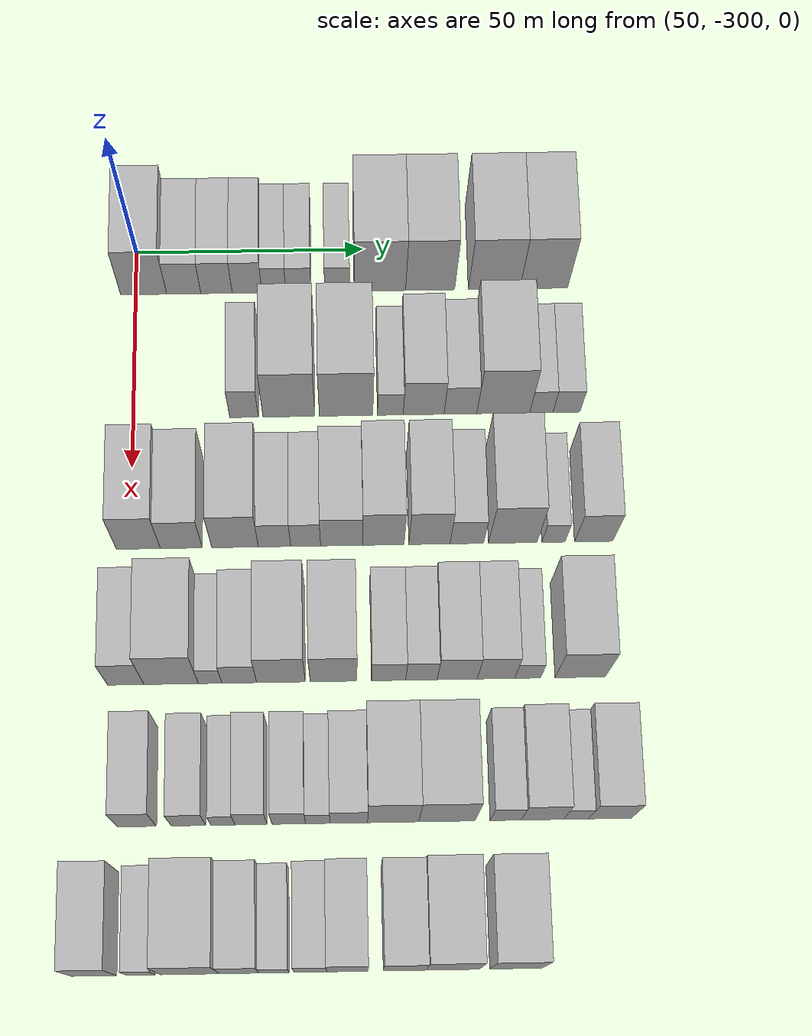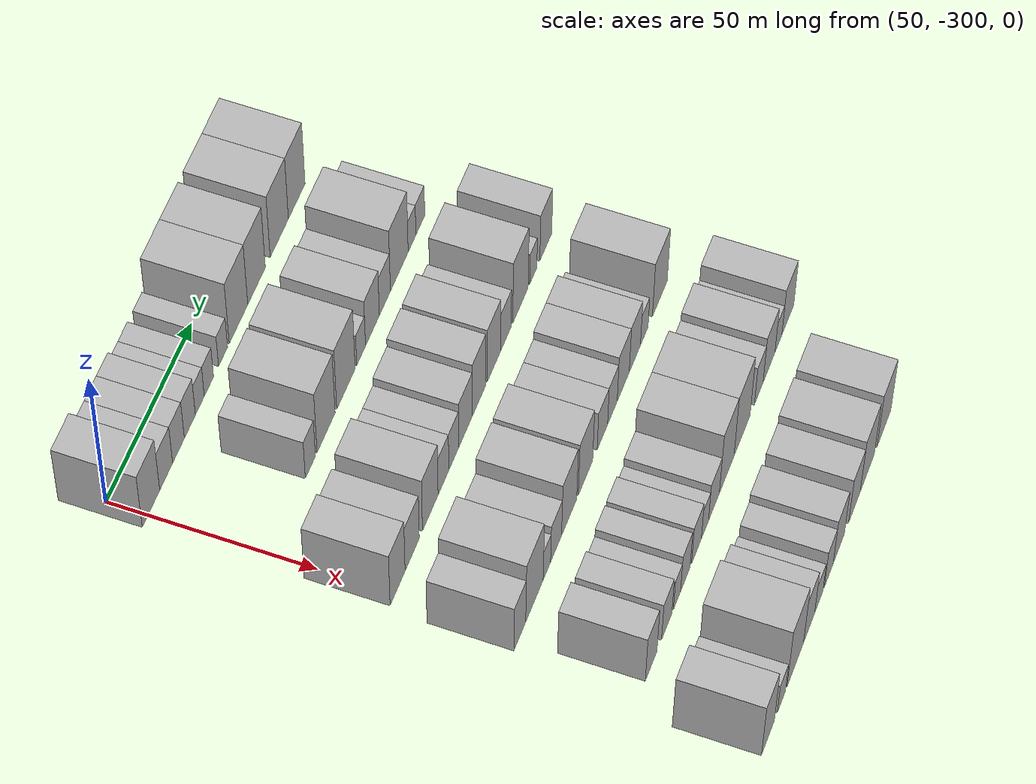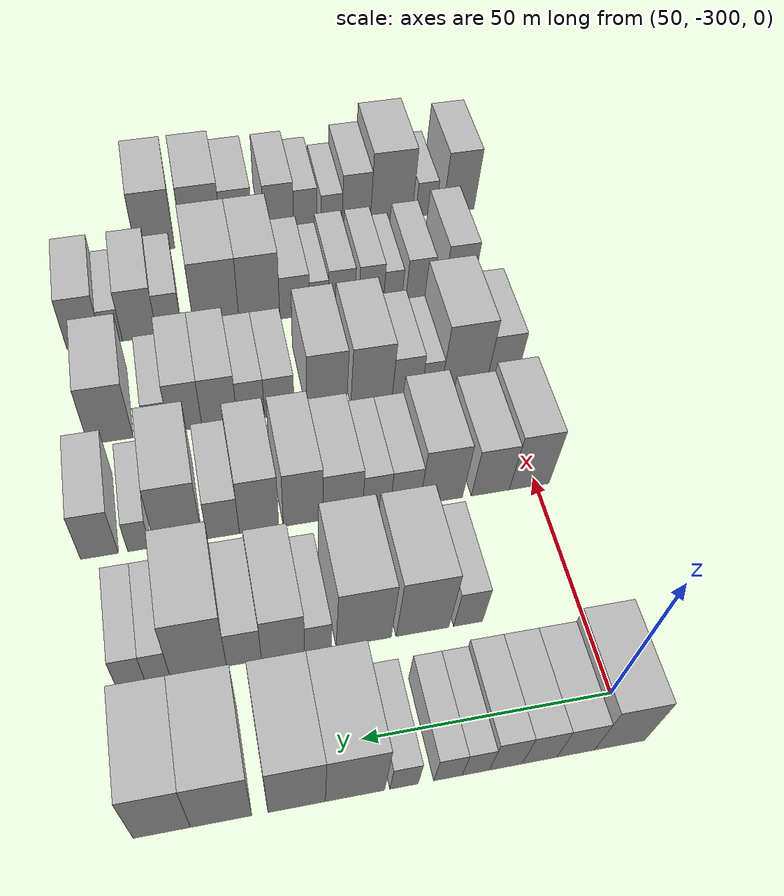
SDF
<sdf version="1.6">
 <world name="default">
  <model name="building_23">
   <static>1</static>
   <pose>50.0000 -298.2257 0 0.000000 0.000000 0.000000</pose>
   <link name="link">
    <pose>0 0 10.50 0 0 0</pose>
    <collision name="collision"><geometry><box><size>20.0000 10.0577 21.0000</size></box></geometry></collision>
    <visual name="visual">
     <cast_shadows>0</cast_shadows>
     <geometry><box><size>20.0000 10.0577 21.0000</size></box></geometry>
     <material>
      <script>
       <uri>model://HANNAS_wall/materials/scripts</uri>
       <uri>model://HANNAS_wall/materials/textures</uri>
       <name>vrc/HANNAS_wall</name>
      </script>
     </material>
    </visual>
   </link>
  </model>
  <model name="building_24">
   <static>1</static>
   <pose>50.0000 -289.4588 0 0.000000 0.000000 0.000000</pose>
   <link name="link">
    <pose>0 0 7.50 0 0 0</pose>
    <collision name="collision"><geometry><box><size>20.0000 7.4761 15.0000</size></box></geometry></collision>
    <visual name="visual">
     <cast_shadows>0</cast_shadows>
     <geometry><box><size>20.0000 7.4761 15.0000</size></box></geometry>
     <material>
      <script>
       <uri>model://HANNAS_wall/materials/scripts</uri>
       <uri>model://HANNAS_wall/materials/textures</uri>
       <name>vrc/HANNAS_wall</name>
      </script>
     </material>
    </visual>
   </link>
  </model>
  <model name="building_25">
   <static>1</static>
   <pose>50.0000 -282.2839 0 0.000000 0.000000 0.000000</pose>
   <link name="link">
    <pose>0 0 7.50 0 0 0</pose>
    <collision name="collision"><geometry><box><size>20.0000 6.8737 15.0000</size></box></geometry></collision>
    <visual name="visual">
     <cast_shadows>0</cast_shadows>
     <geometry><box><size>20.0000 6.8737 15.0000</size></box></geometry>
     <material>
      <script>
       <uri>model://HANNAS_wall/materials/scripts</uri>
       <uri>model://HANNAS_wall/materials/textures</uri>
       <name>vrc/HANNAS_wall</name>
      </script>
     </material>
    </visual>
   </link>
  </model>
  <model name="building_26">
   <static>1</static>
   <pose>50.0000 -275.6024 0 0.000000 0.000000 0.000000</pose>
   <link name="link">
    <pose>0 0 7.50 0 0 0</pose>
    <collision name="collision"><geometry><box><size>20.0000 6.4892 15.0000</size></box></geometry></collision>
    <visual name="visual">
     <cast_shadows>0</cast_shadows>
     <geometry><box><size>20.0000 6.4892 15.0000</size></box></geometry>
     <material>
      <script>
       <uri>model://HANNAS_wall/materials/scripts</uri>
       <uri>model://HANNAS_wall/materials/textures</uri>
       <name>vrc/HANNAS_wall</name>
      </script>
     </material>
    </visual>
   </link>
  </model>
  <model name="building_27">
   <static>1</static>
   <pose>50.0000 -269.7325 0 0.000000 0.000000 0.000000</pose>
   <link name="link">
    <pose>0 0 6.00 0 0 0</pose>
    <collision name="collision"><geometry><box><size>20.0000 5.2507 12.0000</size></box></geometry></collision>
    <visual name="visual">
     <cast_shadows>0</cast_shadows>
     <geometry><box><size>20.0000 5.2507 12.0000</size></box></geometry>
     <material>
      <script>
       <uri>model://HANNAS_wall/materials/scripts</uri>
       <uri>model://HANNAS_wall/materials/textures</uri>
       <name>vrc/HANNAS_wall</name>
      </script>
     </material>
    </visual>
   </link>
  </model>
  <model name="building_28">
   <static>1</static>
   <pose>50.0000 -264.3541 0 0.000000 0.000000 0.000000</pose>
   <link name="link">
    <pose>0 0 6.00 0 0 0</pose>
    <collision name="collision"><geometry><box><size>20.0000 5.5062 12.0000</size></box></geometry></collision>
    <visual name="visual">
     <cast_shadows>0</cast_shadows>
     <geometry><box><size>20.0000 5.5062 12.0000</size></box></geometry>
     <material>
      <script>
       <uri>model://HANNAS_wall/materials/scripts</uri>
       <uri>model://HANNAS_wall/materials/textures</uri>
       <name>vrc/HANNAS_wall</name>
      </script>
     </material>
    </visual>
   </link>
  </model>
  <model name="building_29">
   <static>1</static>
   <pose>50.0000 -255.8877 0 0.000000 0.000000 0.000000</pose>
   <link name="link">
    <pose>0 0 6.00 0 0 0</pose>
    <collision name="collision"><geometry><box><size>20.0000 5.4264 12.0000</size></box></geometry></collision>
    <visual name="visual">
     <cast_shadows>0</cast_shadows>
     <geometry><box><size>20.0000 5.4264 12.0000</size></box></geometry>
     <material>
      <script>
       <uri>model://HANNAS_wall/materials/scripts</uri>
       <uri>model://HANNAS_wall/materials/textures</uri>
       <name>vrc/HANNAS_wall</name>
      </script>
     </material>
    </visual>
   </link>
  </model>
  <model name="building_30">
   <static>1</static>
   <pose>50.0000 -246.5515 0 0.000000 0.000000 0.000000</pose>
   <link name="link">
    <pose>0 0 12.00 0 0 0</pose>
    <collision name="collision"><geometry><box><size>20.0000 11.2462 24.0000</size></box></geometry></collision>
    <visual name="visual">
     <cast_shadows>0</cast_shadows>
     <geometry><box><size>20.0000 11.2462 24.0000</size></box></geometry>
     <material>
      <script>
       <uri>model://HANNAS_wall/materials/scripts</uri>
       <uri>model://HANNAS_wall/materials/textures</uri>
       <name>vrc/HANNAS_wall</name>
      </script>
     </material>
    </visual>
   </link>
  </model>
  <model name="building_31">
   <static>1</static>
   <pose>50.0000 -235.5521 0 0.000000 0.000000 0.000000</pose>
   <link name="link">
    <pose>0 0 12.00 0 0 0</pose>
    <collision name="collision"><geometry><box><size>20.0000 10.7525 24.0000</size></box></geometry></collision>
    <visual name="visual">
     <cast_shadows>0</cast_shadows>
     <geometry><box><size>20.0000 10.7525 24.0000</size></box></geometry>
     <material>
      <script>
       <uri>model://HANNAS_wall/materials/scripts</uri>
       <uri>model://HANNAS_wall/materials/textures</uri>
       <name>vrc/HANNAS_wall</name>
      </script>
     </material>
    </visual>
   </link>
  </model>
  <model name="building_32">
   <static>1</static>
   <pose>50.0000 -221.5228 0 0.000000 0.000000 0.000000</pose>
   <link name="link">
    <pose>0 0 12.00 0 0 0</pose>
    <collision name="collision"><geometry><box><size>20.0000 11.3062 24.0000</size></box></geometry></collision>
    <visual name="visual">
     <cast_shadows>0</cast_shadows>
     <geometry><box><size>20.0000 11.3062 24.0000</size></box></geometry>
     <material>
      <script>
       <uri>model://HANNAS_wall/materials/scripts</uri>
       <uri>model://HANNAS_wall/materials/textures</uri>
       <name>vrc/HANNAS_wall</name>
      </script>
     </material>
    </visual>
   </link>
  </model>
  <model name="building_33">
   <static>1</static>
   <pose>50.0000 -210.6419 0 0.000000 0.000000 0.000000</pose>
   <link name="link">
    <pose>0 0 12.00 0 0 0</pose>
    <collision name="collision"><geometry><box><size>20.0000 10.4556 24.0000</size></box></geometry></collision>
    <visual name="visual">
     <cast_shadows>0</cast_shadows>
     <geometry><box><size>20.0000 10.4556 24.0000</size></box></geometry>
     <material>
      <script>
       <uri>model://HANNAS_wall/materials/scripts</uri>
       <uri>model://HANNAS_wall/materials/textures</uri>
       <name>vrc/HANNAS_wall</name>
      </script>
     </material>
    </visual>
   </link>
  </model>
  <model name="building_137">
   <static>1</static>
   <pose>79.0000 -276.2377 0 0.000000 0.000000 0.000000</pose>
   <link name="link">
    <pose>0 0 7.50 0 0 0</pose>
    <collision name="collision"><geometry><box><size>20.0000 6.1100 15.0000</size></box></geometry></collision>
    <visual name="visual">
     <cast_shadows>0</cast_shadows>
     <geometry><box><size>20.0000 6.1100 15.0000</size></box></geometry>
     <material>
      <script>
       <uri>model://HANNAS_wall/materials/scripts</uri>
       <uri>model://HANNAS_wall/materials/textures</uri>
       <name>vrc/HANNAS_wall</name>
      </script>
     </material>
    </visual>
   </link>
  </model>
  <model name="building_138">
   <static>1</static>
   <pose>79.0000 -266.6431 0 0.000000 0.000000 0.000000</pose>
   <link name="link">
    <pose>0 0 12.00 0 0 0</pose>
    <collision name="collision"><geometry><box><size>20.0000 11.0792 24.0000</size></box></geometry></collision>
    <visual name="visual">
     <cast_shadows>0</cast_shadows>
     <geometry><box><size>20.0000 11.0792 24.0000</size></box></geometry>
     <material>
      <script>
       <uri>model://HANNAS_wall/materials/scripts</uri>
       <uri>model://HANNAS_wall/materials/textures</uri>
       <name>vrc/HANNAS_wall</name>
      </script>
     </material>
    </visual>
   </link>
  </model>
  <model name="building_139">
   <static>1</static>
   <pose>79.0000 -254.3896 0 0.000000 0.000000 0.000000</pose>
   <link name="link">
    <pose>0 0 12.00 0 0 0</pose>
    <collision name="collision"><geometry><box><size>20.0000 11.4278 24.0000</size></box></geometry></collision>
    <visual name="visual">
     <cast_shadows>0</cast_shadows>
     <geometry><box><size>20.0000 11.4278 24.0000</size></box></geometry>
     <material>
      <script>
       <uri>model://HANNAS_wall/materials/scripts</uri>
       <uri>model://HANNAS_wall/materials/textures</uri>
       <name>vrc/HANNAS_wall</name>
      </script>
     </material>
    </visual>
   </link>
  </model>
  <model name="building_140">
   <static>1</static>
   <pose>79.0000 -244.9218 0 0.000000 0.000000 0.000000</pose>
   <link name="link">
    <pose>0 0 6.00 0 0 0</pose>
    <collision name="collision"><geometry><box><size>20.0000 5.5080 12.0000</size></box></geometry></collision>
    <visual name="visual">
     <cast_shadows>0</cast_shadows>
     <geometry><box><size>20.0000 5.5080 12.0000</size></box></geometry>
     <material>
      <script>
       <uri>model://HANNAS_wall/materials/scripts</uri>
       <uri>model://HANNAS_wall/materials/textures</uri>
       <name>vrc/HANNAS_wall</name>
      </script>
     </material>
    </visual>
   </link>
  </model>
  <model name="building_141">
   <static>1</static>
   <pose>79.0000 -237.7889 0 0.000000 0.000000 0.000000</pose>
   <link name="link">
    <pose>0 0 9.00 0 0 0</pose>
    <collision name="collision"><geometry><box><size>20.0000 8.7578 18.0000</size></box></geometry></collision>
    <visual name="visual">
     <cast_shadows>0</cast_shadows>
     <geometry><box><size>20.0000 8.7578 18.0000</size></box></geometry>
     <material>
      <script>
       <uri>model://HANNAS_wall/materials/scripts</uri>
       <uri>model://HANNAS_wall/materials/textures</uri>
       <name>vrc/HANNAS_wall</name>
      </script>
     </material>
    </visual>
   </link>
  </model>
  <model name="building_142">
   <static>1</static>
   <pose>79.0000 -229.8968 0 0.000000 0.000000 0.000000</pose>
   <link name="link">
    <pose>0 0 7.50 0 0 0</pose>
    <collision name="collision"><geometry><box><size>20.0000 7.0263 15.0000</size></box></geometry></collision>
    <visual name="visual">
     <cast_shadows>0</cast_shadows>
     <geometry><box><size>20.0000 7.0263 15.0000</size></box></geometry>
     <material>
      <script>
       <uri>model://HANNAS_wall/materials/scripts</uri>
       <uri>model://HANNAS_wall/materials/textures</uri>
       <name>vrc/HANNAS_wall</name>
      </script>
     </material>
    </visual>
   </link>
  </model>
  <model name="building_143">
   <static>1</static>
   <pose>79.0000 -220.6958 0 0.000000 0.000000 0.000000</pose>
   <link name="link">
    <pose>0 0 12.00 0 0 0</pose>
    <collision name="collision"><geometry><box><size>20.0000 11.3756 24.0000</size></box></geometry></collision>
    <visual name="visual">
     <cast_shadows>0</cast_shadows>
     <geometry><box><size>20.0000 11.3756 24.0000</size></box></geometry>
     <material>
      <script>
       <uri>model://HANNAS_wall/materials/scripts</uri>
       <uri>model://HANNAS_wall/materials/textures</uri>
       <name>vrc/HANNAS_wall</name>
      </script>
     </material>
    </visual>
   </link>
  </model>
  <model name="building_144">
   <static>1</static>
   <pose>79.0000 -212.5199 0 0.000000 0.000000 0.000000</pose>
   <link name="link">
    <pose>0 0 6.00 0 0 0</pose>
    <collision name="collision"><geometry><box><size>20.0000 4.9763 12.0000</size></box></geometry></collision>
    <visual name="visual">
     <cast_shadows>0</cast_shadows>
     <geometry><box><size>20.0000 4.9763 12.0000</size></box></geometry>
     <material>
      <script>
       <uri>model://HANNAS_wall/materials/scripts</uri>
       <uri>model://HANNAS_wall/materials/textures</uri>
       <name>vrc/HANNAS_wall</name>
      </script>
     </material>
    </visual>
   </link>
  </model>
  <model name="building_145">
   <static>1</static>
   <pose>79.0000 -207.1407 0 0.000000 0.000000 0.000000</pose>
   <link name="link">
    <pose>0 0 6.00 0 0 0</pose>
    <collision name="collision"><geometry><box><size>20.0000 5.7820 12.0000</size></box></geometry></collision>
    <visual name="visual">
     <cast_shadows>0</cast_shadows>
     <geometry><box><size>20.0000 5.7820 12.0000</size></box></geometry>
     <material>
      <script>
       <uri>model://HANNAS_wall/materials/scripts</uri>
       <uri>model://HANNAS_wall/materials/textures</uri>
       <name>vrc/HANNAS_wall</name>
      </script>
     </material>
    </visual>
   </link>
  </model>
  <model name="building_253">
   <static>1</static>
   <pose>108.0000 -298.3660 0 0.000000 0.000000 0.000000</pose>
   <link name="link">
    <pose>0 0 10.50 0 0 0</pose>
    <collision name="collision"><geometry><box><size>20.0000 9.2102 21.0000</size></box></geometry></collision>
    <visual name="visual">
     <cast_shadows>0</cast_shadows>
     <geometry><box><size>20.0000 9.2102 21.0000</size></box></geometry>
     <material>
      <script>
       <uri>model://HANNAS_wall/materials/scripts</uri>
       <uri>model://HANNAS_wall/materials/textures</uri>
       <name>vrc/HANNAS_wall</name>
      </script>
     </material>
    </visual>
   </link>
  </model>
  <model name="building_254">
   <static>1</static>
   <pose>108.0000 -289.3738 0 0.000000 0.000000 0.000000</pose>
   <link name="link">
    <pose>0 0 9.00 0 0 0</pose>
    <collision name="collision"><geometry><box><size>20.0000 8.7741 18.0000</size></box></geometry></collision>
    <visual name="visual">
     <cast_shadows>0</cast_shadows>
     <geometry><box><size>20.0000 8.7741 18.0000</size></box></geometry>
     <material>
      <script>
       <uri>model://HANNAS_wall/materials/scripts</uri>
       <uri>model://HANNAS_wall/materials/textures</uri>
       <name>vrc/HANNAS_wall</name>
      </script>
     </material>
    </visual>
   </link>
  </model>
  <model name="building_255">
   <static>1</static>
   <pose>108.0000 -278.1052 0 0.000000 0.000000 0.000000</pose>
   <link name="link">
    <pose>0 0 10.50 0 0 0</pose>
    <collision name="collision"><geometry><box><size>20.0000 9.7631 21.0000</size></box></geometry></collision>
    <visual name="visual">
     <cast_shadows>0</cast_shadows>
     <geometry><box><size>20.0000 9.7631 21.0000</size></box></geometry>
     <material>
      <script>
       <uri>model://HANNAS_wall/materials/scripts</uri>
       <uri>model://HANNAS_wall/materials/textures</uri>
       <name>vrc/HANNAS_wall</name>
      </script>
     </material>
    </visual>
   </link>
  </model>
  <model name="building_256">
   <static>1</static>
   <pose>108.0000 -269.8398 0 0.000000 0.000000 0.000000</pose>
   <link name="link">
    <pose>0 0 7.50 0 0 0</pose>
    <collision name="collision"><geometry><box><size>20.0000 6.7678 15.0000</size></box></geometry></collision>
    <visual name="visual">
     <cast_shadows>0</cast_shadows>
     <geometry><box><size>20.0000 6.7678 15.0000</size></box></geometry>
     <material>
      <script>
       <uri>model://HANNAS_wall/materials/scripts</uri>
       <uri>model://HANNAS_wall/materials/textures</uri>
       <name>vrc/HANNAS_wall</name>
      </script>
     </material>
    </visual>
   </link>
  </model>
  <model name="building_257">
   <static>1</static>
   <pose>108.0000 -263.3205 0 0.000000 0.000000 0.000000</pose>
   <link name="link">
    <pose>0 0 7.50 0 0 0</pose>
    <collision name="collision"><geometry><box><size>20.0000 6.2708 15.0000</size></box></geometry></collision>
    <visual name="visual">
     <cast_shadows>0</cast_shadows>
     <geometry><box><size>20.0000 6.2708 15.0000</size></box></geometry>
     <material>
      <script>
       <uri>model://HANNAS_wall/materials/scripts</uri>
       <uri>model://HANNAS_wall/materials/textures</uri>
       <name>vrc/HANNAS_wall</name>
      </script>
     </material>
    </visual>
   </link>
  </model>
  <model name="building_258">
   <static>1</static>
   <pose>108.0000 -255.7878 0 0.000000 0.000000 0.000000</pose>
   <link name="link">
    <pose>0 0 9.00 0 0 0</pose>
    <collision name="collision"><geometry><box><size>20.0000 8.7946 18.0000</size></box></geometry></collision>
    <visual name="visual">
     <cast_shadows>0</cast_shadows>
     <geometry><box><size>20.0000 8.7946 18.0000</size></box></geometry>
     <material>
      <script>
       <uri>model://HANNAS_wall/materials/scripts</uri>
       <uri>model://HANNAS_wall/materials/textures</uri>
       <name>vrc/HANNAS_wall</name>
      </script>
     </material>
    </visual>
   </link>
  </model>
  <model name="building_259">
   <static>1</static>
   <pose>108.0000 -247.0458 0 0.000000 0.000000 0.000000</pose>
   <link name="link">
    <pose>0 0 10.50 0 0 0</pose>
    <collision name="collision"><geometry><box><size>20.0000 8.6893 21.0000</size></box></geometry></collision>
    <visual name="visual">
     <cast_shadows>0</cast_shadows>
     <geometry><box><size>20.0000 8.6893 21.0000</size></box></geometry>
     <material>
      <script>
       <uri>model://HANNAS_wall/materials/scripts</uri>
       <uri>model://HANNAS_wall/materials/textures</uri>
       <name>vrc/HANNAS_wall</name>
      </script>
     </material>
    </visual>
   </link>
  </model>
  <model name="building_260">
   <static>1</static>
   <pose>108.0000 -237.3764 0 0.000000 0.000000 0.000000</pose>
   <link name="link">
    <pose>0 0 10.50 0 0 0</pose>
    <collision name="collision"><geometry><box><size>20.0000 8.6495 21.0000</size></box></geometry></collision>
    <visual name="visual">
     <cast_shadows>0</cast_shadows>
     <geometry><box><size>20.0000 8.6495 21.0000</size></box></geometry>
     <material>
      <script>
       <uri>model://HANNAS_wall/materials/scripts</uri>
       <uri>model://HANNAS_wall/materials/textures</uri>
       <name>vrc/HANNAS_wall</name>
      </script>
     </material>
    </visual>
   </link>
  </model>
  <model name="building_261">
   <static>1</static>
   <pose>108.0000 -229.5227 0 0.000000 0.000000 0.000000</pose>
   <link name="link">
    <pose>0 0 7.50 0 0 0</pose>
    <collision name="collision"><geometry><box><size>20.0000 7.0580 15.0000</size></box></geometry></collision>
    <visual name="visual">
     <cast_shadows>0</cast_shadows>
     <geometry><box><size>20.0000 7.0580 15.0000</size></box></geometry>
     <material>
      <script>
       <uri>model://HANNAS_wall/materials/scripts</uri>
       <uri>model://HANNAS_wall/materials/textures</uri>
       <name>vrc/HANNAS_wall</name>
      </script>
     </material>
    </visual>
   </link>
  </model>
  <model name="building_262">
   <static>1</static>
   <pose>108.0000 -219.8920 0 0.000000 0.000000 0.000000</pose>
   <link name="link">
    <pose>0 0 12.00 0 0 0</pose>
    <collision name="collision"><geometry><box><size>20.0000 10.2035 24.0000</size></box></geometry></collision>
    <visual name="visual">
     <cast_shadows>0</cast_shadows>
     <geometry><box><size>20.0000 10.2035 24.0000</size></box></geometry>
     <material>
      <script>
       <uri>model://HANNAS_wall/materials/scripts</uri>
       <uri>model://HANNAS_wall/materials/textures</uri>
       <name>vrc/HANNAS_wall</name>
      </script>
     </material>
    </visual>
   </link>
  </model>
  <model name="building_263">
   <static>1</static>
   <pose>108.0000 -211.3522 0 0.000000 0.000000 0.000000</pose>
   <link name="link">
    <pose>0 0 6.00 0 0 0</pose>
    <collision name="collision"><geometry><box><size>20.0000 4.8761 12.0000</size></box></geometry></collision>
    <visual name="visual">
     <cast_shadows>0</cast_shadows>
     <geometry><box><size>20.0000 4.8761 12.0000</size></box></geometry>
     <material>
      <script>
       <uri>model://HANNAS_wall/materials/scripts</uri>
       <uri>model://HANNAS_wall/materials/textures</uri>
       <name>vrc/HANNAS_wall</name>
      </script>
     </material>
    </visual>
   </link>
  </model>
  <model name="building_264">
   <static>1</static>
   <pose>108.0000 -202.8884 0 0.000000 0.000000 0.000000</pose>
   <link name="link">
    <pose>0 0 9.00 0 0 0</pose>
    <collision name="collision"><geometry><box><size>20.0000 8.0516 18.0000</size></box></geometry></collision>
    <visual name="visual">
     <cast_shadows>0</cast_shadows>
     <geometry><box><size>20.0000 8.0516 18.0000</size></box></geometry>
     <material>
      <script>
       <uri>model://HANNAS_wall/materials/scripts</uri>
       <uri>model://HANNAS_wall/materials/textures</uri>
       <name>vrc/HANNAS_wall</name>
      </script>
     </material>
    </visual>
   </link>
  </model>
  <model name="building_361">
   <static>1</static>
   <pose>137.0000 -300.4558 0 0.000000 0.000000 0.000000</pose>
   <link name="link">
    <pose>0 0 9.00 0 0 0</pose>
    <collision name="collision"><geometry><box><size>20.0000 7.4928 18.0000</size></box></geometry></collision>
    <visual name="visual">
     <cast_shadows>0</cast_shadows>
     <geometry><box><size>20.0000 7.4928 18.0000</size></box></geometry>
     <material>
      <script>
       <uri>model://HANNAS_wall/materials/scripts</uri>
       <uri>model://HANNAS_wall/materials/textures</uri>
       <name>vrc/HANNAS_wall</name>
      </script>
     </material>
    </visual>
   </link>
  </model>
  <model name="building_362">
   <static>1</static>
   <pose>137.0000 -291.1329 0 0.000000 0.000000 0.000000</pose>
   <link name="link">
    <pose>0 0 12.00 0 0 0</pose>
    <collision name="collision"><geometry><box><size>20.0000 11.1530 24.0000</size></box></geometry></collision>
    <visual name="visual">
     <cast_shadows>0</cast_shadows>
     <geometry><box><size>20.0000 11.1530 24.0000</size></box></geometry>
     <material>
      <script>
       <uri>model://HANNAS_wall/materials/scripts</uri>
       <uri>model://HANNAS_wall/materials/textures</uri>
       <name>vrc/HANNAS_wall</name>
      </script>
     </material>
    </visual>
   </link>
  </model>
  <model name="building_363">
   <static>1</static>
   <pose>137.0000 -283.1540 0 0.000000 0.000000 0.000000</pose>
   <link name="link">
    <pose>0 0 6.00 0 0 0</pose>
    <collision name="collision"><geometry><box><size>20.0000 4.8050 12.0000</size></box></geometry></collision>
    <visual name="visual">
     <cast_shadows>0</cast_shadows>
     <geometry><box><size>20.0000 4.8050 12.0000</size></box></geometry>
     <material>
      <script>
       <uri>model://HANNAS_wall/materials/scripts</uri>
       <uri>model://HANNAS_wall/materials/textures</uri>
       <name>vrc/HANNAS_wall</name>
      </script>
     </material>
    </visual>
   </link>
  </model>
  <model name="building_364">
   <static>1</static>
   <pose>137.0000 -277.1880 0 0.000000 0.000000 0.000000</pose>
   <link name="link">
    <pose>0 0 7.50 0 0 0</pose>
    <collision name="collision"><geometry><box><size>20.0000 7.1269 15.0000</size></box></geometry></collision>
    <visual name="visual">
     <cast_shadows>0</cast_shadows>
     <geometry><box><size>20.0000 7.1269 15.0000</size></box></geometry>
     <material>
      <script>
       <uri>model://HANNAS_wall/materials/scripts</uri>
       <uri>model://HANNAS_wall/materials/textures</uri>
       <name>vrc/HANNAS_wall</name>
      </script>
     </material>
    </visual>
   </link>
  </model>
  <model name="building_365">
   <static>1</static>
   <pose>137.0000 -268.6393 0 0.000000 0.000000 0.000000</pose>
   <link name="link">
    <pose>0 0 10.50 0 0 0</pose>
    <collision name="collision"><geometry><box><size>20.0000 9.9704 21.0000</size></box></geometry></collision>
    <visual name="visual">
     <cast_shadows>0</cast_shadows>
     <geometry><box><size>20.0000 9.9704 21.0000</size></box></geometry>
     <material>
      <script>
       <uri>model://HANNAS_wall/materials/scripts</uri>
       <uri>model://HANNAS_wall/materials/textures</uri>
       <name>vrc/HANNAS_wall</name>
      </script>
     </material>
    </visual>
   </link>
  </model>
  <model name="building_366">
   <static>1</static>
   <pose>137.0000 -257.8658 0 0.000000 0.000000 0.000000</pose>
   <link name="link">
    <pose>0 0 10.50 0 0 0</pose>
    <collision name="collision"><geometry><box><size>20.0000 9.5767 21.0000</size></box></geometry></collision>
    <visual name="visual">
     <cast_shadows>0</cast_shadows>
     <geometry><box><size>20.0000 9.5767 21.0000</size></box></geometry>
     <material>
      <script>
       <uri>model://HANNAS_wall/materials/scripts</uri>
       <uri>model://HANNAS_wall/materials/textures</uri>
       <name>vrc/HANNAS_wall</name>
      </script>
     </material>
    </visual>
   </link>
  </model>
  <model name="building_367">
   <static>1</static>
   <pose>137.0000 -246.5759 0 0.000000 0.000000 0.000000</pose>
   <link name="link">
    <pose>0 0 7.50 0 0 0</pose>
    <collision name="collision"><geometry><box><size>20.0000 7.0030 15.0000</size></box></geometry></collision>
    <visual name="visual">
     <cast_shadows>0</cast_shadows>
     <geometry><box><size>20.0000 7.0030 15.0000</size></box></geometry>
     <material>
      <script>
       <uri>model://HANNAS_wall/materials/scripts</uri>
       <uri>model://HANNAS_wall/materials/textures</uri>
       <name>vrc/HANNAS_wall</name>
      </script>
     </material>
    </visual>
   </link>
  </model>
  <model name="building_368">
   <static>1</static>
   <pose>137.0000 -239.8425 0 0.000000 0.000000 0.000000</pose>
   <link name="link">
    <pose>0 0 7.50 0 0 0</pose>
    <collision name="collision"><geometry><box><size>20.0000 6.4639 15.0000</size></box></geometry></collision>
    <visual name="visual">
     <cast_shadows>0</cast_shadows>
     <geometry><box><size>20.0000 6.4639 15.0000</size></box></geometry>
     <material>
      <script>
       <uri>model://HANNAS_wall/materials/scripts</uri>
       <uri>model://HANNAS_wall/materials/textures</uri>
       <name>vrc/HANNAS_wall</name>
      </script>
     </material>
    </visual>
   </link>
  </model>
  <model name="building_369">
   <static>1</static>
   <pose>137.0000 -232.5059 0 0.000000 0.000000 0.000000</pose>
   <link name="link">
    <pose>0 0 9.00 0 0 0</pose>
    <collision name="collision"><geometry><box><size>20.0000 8.2093 18.0000</size></box></geometry></collision>
    <visual name="visual">
     <cast_shadows>0</cast_shadows>
     <geometry><box><size>20.0000 8.2093 18.0000</size></box></geometry>
     <material>
      <script>
       <uri>model://HANNAS_wall/materials/scripts</uri>
       <uri>model://HANNAS_wall/materials/textures</uri>
       <name>vrc/HANNAS_wall</name>
      </script>
     </material>
    </visual>
   </link>
  </model>
  <model name="building_370">
   <static>1</static>
   <pose>137.0000 -224.5582 0 0.000000 0.000000 0.000000</pose>
   <link name="link">
    <pose>0 0 9.00 0 0 0</pose>
    <collision name="collision"><geometry><box><size>20.0000 7.6862 18.0000</size></box></geometry></collision>
    <visual name="visual">
     <cast_shadows>0</cast_shadows>
     <geometry><box><size>20.0000 7.6862 18.0000</size></box></geometry>
     <material>
      <script>
       <uri>model://HANNAS_wall/materials/scripts</uri>
       <uri>model://HANNAS_wall/materials/textures</uri>
       <name>vrc/HANNAS_wall</name>
      </script>
     </material>
    </visual>
   </link>
  </model>
  <model name="building_371">
   <static>1</static>
   <pose>137.0000 -218.0694 0 0.000000 0.000000 0.000000</pose>
   <link name="link">
    <pose>0 0 6.00 0 0 0</pose>
    <collision name="collision"><geometry><box><size>20.0000 5.2915 12.0000</size></box></geometry></collision>
    <visual name="visual">
     <cast_shadows>0</cast_shadows>
     <geometry><box><size>20.0000 5.2915 12.0000</size></box></geometry>
     <material>
      <script>
       <uri>model://HANNAS_wall/materials/scripts</uri>
       <uri>model://HANNAS_wall/materials/textures</uri>
       <name>vrc/HANNAS_wall</name>
      </script>
     </material>
    </visual>
   </link>
  </model>
  <model name="building_372">
   <static>1</static>
   <pose>137.0000 -207.2481 0 0.000000 0.000000 0.000000</pose>
   <link name="link">
    <pose>0 0 10.50 0 0 0</pose>
    <collision name="collision"><geometry><box><size>20.0000 10.3509 21.0000</size></box></geometry></collision>
    <visual name="visual">
     <cast_shadows>0</cast_shadows>
     <geometry><box><size>20.0000 10.3509 21.0000</size></box></geometry>
     <material>
      <script>
       <uri>model://HANNAS_wall/materials/scripts</uri>
       <uri>model://HANNAS_wall/materials/textures</uri>
       <name>vrc/HANNAS_wall</name>
      </script>
     </material>
    </visual>
   </link>
  </model>
  <model name="building_477">
   <static>1</static>
   <pose>166.0000 -297.6002 0 0.000000 0.000000 0.000000</pose>
   <link name="link">
    <pose>0 0 9.00 0 0 0</pose>
    <collision name="collision"><geometry><box><size>20.0000 7.7319 18.0000</size></box></geometry></collision>
    <visual name="visual">
     <cast_shadows>0</cast_shadows>
     <geometry><box><size>20.0000 7.7319 18.0000</size></box></geometry>
     <material>
      <script>
       <uri>model://HANNAS_wall/materials/scripts</uri>
       <uri>model://HANNAS_wall/materials/textures</uri>
       <name>vrc/HANNAS_wall</name>
      </script>
     </material>
    </visual>
   </link>
  </model>
  <model name="building_478">
   <static>1</static>
   <pose>166.0000 -287.2691 0 0.000000 0.000000 0.000000</pose>
   <link name="link">
    <pose>0 0 7.50 0 0 0</pose>
    <collision name="collision"><geometry><box><size>20.0000 6.9304 15.0000</size></box></geometry></collision>
    <visual name="visual">
     <cast_shadows>0</cast_shadows>
     <geometry><box><size>20.0000 6.9304 15.0000</size></box></geometry>
     <material>
      <script>
       <uri>model://HANNAS_wall/materials/scripts</uri>
       <uri>model://HANNAS_wall/materials/textures</uri>
       <name>vrc/HANNAS_wall</name>
      </script>
     </material>
    </visual>
   </link>
  </model>
  <model name="building_479">
   <static>1</static>
   <pose>166.0000 -280.3975 0 0.000000 0.000000 0.000000</pose>
   <link name="link">
    <pose>0 0 6.00 0 0 0</pose>
    <collision name="collision"><geometry><box><size>20.0000 4.8127 12.0000</size></box></geometry></collision>
    <visual name="visual">
     <cast_shadows>0</cast_shadows>
     <geometry><box><size>20.0000 4.8127 12.0000</size></box></geometry>
     <material>
      <script>
       <uri>model://HANNAS_wall/materials/scripts</uri>
       <uri>model://HANNAS_wall/materials/textures</uri>
       <name>vrc/HANNAS_wall</name>
      </script>
     </material>
    </visual>
   </link>
  </model>
  <model name="building_480">
   <static>1</static>
   <pose>166.0000 -274.7808 0 0.000000 0.000000 0.000000</pose>
   <link name="link">
    <pose>0 0 7.50 0 0 0</pose>
    <collision name="collision"><geometry><box><size>20.0000 6.4208 15.0000</size></box></geometry></collision>
    <visual name="visual">
     <cast_shadows>0</cast_shadows>
     <geometry><box><size>20.0000 6.4208 15.0000</size></box></geometry>
     <material>
      <script>
       <uri>model://HANNAS_wall/materials/scripts</uri>
       <uri>model://HANNAS_wall/materials/textures</uri>
       <name>vrc/HANNAS_wall</name>
      </script>
     </material>
    </visual>
   </link>
  </model>
  <model name="building_481">
   <static>1</static>
   <pose>166.0000 -267.2033 0 0.000000 0.000000 0.000000</pose>
   <link name="link">
    <pose>0 0 7.50 0 0 0</pose>
    <collision name="collision"><geometry><box><size>20.0000 6.7341 15.0000</size></box></geometry></collision>
    <visual name="visual">
     <cast_shadows>0</cast_shadows>
     <geometry><box><size>20.0000 6.7341 15.0000</size></box></geometry>
     <material>
      <script>
       <uri>model://HANNAS_wall/materials/scripts</uri>
       <uri>model://HANNAS_wall/materials/textures</uri>
       <name>vrc/HANNAS_wall</name>
      </script>
     </material>
    </visual>
   </link>
  </model>
  <model name="building_482">
   <static>1</static>
   <pose>166.0000 -261.3887 0 0.000000 0.000000 0.000000</pose>
   <link name="link">
    <pose>0 0 6.00 0 0 0</pose>
    <collision name="collision"><geometry><box><size>20.0000 4.8952 12.0000</size></box></geometry></collision>
    <visual name="visual">
     <cast_shadows>0</cast_shadows>
     <geometry><box><size>20.0000 4.8952 12.0000</size></box></geometry>
     <material>
      <script>
       <uri>model://HANNAS_wall/materials/scripts</uri>
       <uri>model://HANNAS_wall/materials/textures</uri>
       <name>vrc/HANNAS_wall</name>
      </script>
     </material>
    </visual>
   </link>
  </model>
  <model name="building_483">
   <static>1</static>
   <pose>166.0000 -255.1920 0 0.000000 0.000000 0.000000</pose>
   <link name="link">
    <pose>0 0 7.50 0 0 0</pose>
    <collision name="collision"><geometry><box><size>20.0000 7.4982 15.0000</size></box></geometry></collision>
    <visual name="visual">
     <cast_shadows>0</cast_shadows>
     <geometry><box><size>20.0000 7.4982 15.0000</size></box></geometry>
     <material>
      <script>
       <uri>model://HANNAS_wall/materials/scripts</uri>
       <uri>model://HANNAS_wall/materials/textures</uri>
       <name>vrc/HANNAS_wall</name>
      </script>
     </material>
    </visual>
   </link>
  </model>
  <model name="building_484">
   <static>1</static>
   <pose>166.0000 -246.3304 0 0.000000 0.000000 0.000000</pose>
   <link name="link">
    <pose>0 0 12.00 0 0 0</pose>
    <collision name="collision"><geometry><box><size>20.0000 10.2251 24.0000</size></box></geometry></collision>
    <visual name="visual">
     <cast_shadows>0</cast_shadows>
     <geometry><box><size>20.0000 10.2251 24.0000</size></box></geometry>
     <material>
      <script>
       <uri>model://HANNAS_wall/materials/scripts</uri>
       <uri>model://HANNAS_wall/materials/textures</uri>
       <name>vrc/HANNAS_wall</name>
      </script>
     </material>
    </visual>
   </link>
  </model>
  <model name="building_485">
   <static>1</static>
   <pose>166.0000 -235.5525 0 0.000000 0.000000 0.000000</pose>
   <link name="link">
    <pose>0 0 12.00 0 0 0</pose>
    <collision name="collision"><geometry><box><size>20.0000 11.3305 24.0000</size></box></geometry></collision>
    <visual name="visual">
     <cast_shadows>0</cast_shadows>
     <geometry><box><size>20.0000 11.3305 24.0000</size></box></geometry>
     <material>
      <script>
       <uri>model://HANNAS_wall/materials/scripts</uri>
       <uri>model://HANNAS_wall/materials/textures</uri>
       <name>vrc/HANNAS_wall</name>
      </script>
     </material>
    </visual>
   </link>
  </model>
  <model name="building_486">
   <static>1</static>
   <pose>166.0000 -223.7680 0 0.000000 0.000000 0.000000</pose>
   <link name="link">
    <pose>0 0 7.50 0 0 0</pose>
    <collision name="collision"><geometry><box><size>20.0000 6.2385 15.0000</size></box></geometry></collision>
    <visual name="visual">
     <cast_shadows>0</cast_shadows>
     <geometry><box><size>20.0000 6.2385 15.0000</size></box></geometry>
     <material>
      <script>
       <uri>model://HANNAS_wall/materials/scripts</uri>
       <uri>model://HANNAS_wall/materials/textures</uri>
       <name>vrc/HANNAS_wall</name>
      </script>
     </material>
    </visual>
   </link>
  </model>
  <model name="building_487">
   <static>1</static>
   <pose>166.0000 -216.3791 0 0.000000 0.000000 0.000000</pose>
   <link name="link">
    <pose>0 0 9.00 0 0 0</pose>
    <collision name="collision"><geometry><box><size>20.0000 8.5392 18.0000</size></box></geometry></collision>
    <visual name="visual">
     <cast_shadows>0</cast_shadows>
     <geometry><box><size>20.0000 8.5392 18.0000</size></box></geometry>
     <material>
      <script>
       <uri>model://HANNAS_wall/materials/scripts</uri>
       <uri>model://HANNAS_wall/materials/textures</uri>
       <name>vrc/HANNAS_wall</name>
      </script>
     </material>
    </visual>
   </link>
  </model>
  <model name="building_488">
   <static>1</static>
   <pose>166.0000 -209.6100 0 0.000000 0.000000 0.000000</pose>
   <link name="link">
    <pose>0 0 6.00 0 0 0</pose>
    <collision name="collision"><geometry><box><size>20.0000 4.9990 12.0000</size></box></geometry></collision>
    <visual name="visual">
     <cast_shadows>0</cast_shadows>
     <geometry><box><size>20.0000 4.9990 12.0000</size></box></geometry>
     <material>
      <script>
       <uri>model://HANNAS_wall/materials/scripts</uri>
       <uri>model://HANNAS_wall/materials/textures</uri>
       <name>vrc/HANNAS_wall</name>
      </script>
     </material>
    </visual>
   </link>
  </model>
  <model name="building_489">
   <static>1</static>
   <pose>166.0000 -202.7729 0 0.000000 0.000000 0.000000</pose>
   <link name="link">
    <pose>0 0 9.00 0 0 0</pose>
    <collision name="collision"><geometry><box><size>20.0000 8.6753 18.0000</size></box></geometry></collision>
    <visual name="visual">
     <cast_shadows>0</cast_shadows>
     <geometry><box><size>20.0000 8.6753 18.0000</size></box></geometry>
     <material>
      <script>
       <uri>model://HANNAS_wall/materials/scripts</uri>
       <uri>model://HANNAS_wall/materials/textures</uri>
       <name>vrc/HANNAS_wall</name>
      </script>
     </material>
    </visual>
   </link>
  </model>
  <model name="building_587">
   <static>1</static>
   <pose>195.0000 -305.5154 0 0.000000 0.000000 0.000000</pose>
   <link name="link">
    <pose>0 0 10.50 0 0 0</pose>
    <collision name="collision"><geometry><box><size>20.0000 8.8137 21.0000</size></box></geometry></collision>
    <visual name="visual">
     <cast_shadows>0</cast_shadows>
     <geometry><box><size>20.0000 8.8137 21.0000</size></box></geometry>
     <material>
      <script>
       <uri>model://HANNAS_wall/materials/scripts</uri>
       <uri>model://HANNAS_wall/materials/textures</uri>
       <name>vrc/HANNAS_wall</name>
      </script>
     </material>
    </visual>
   </link>
  </model>
  <model name="building_588">
   <static>1</static>
   <pose>195.0000 -296.2970 0 0.000000 0.000000 0.000000</pose>
   <link name="link">
    <pose>0 0 6.00 0 0 0</pose>
    <collision name="collision"><geometry><box><size>20.0000 5.6231 12.0000</size></box></geometry></collision>
    <visual name="visual">
     <cast_shadows>0</cast_shadows>
     <geometry><box><size>20.0000 5.6231 12.0000</size></box></geometry>
     <material>
      <script>
       <uri>model://HANNAS_wall/materials/scripts</uri>
       <uri>model://HANNAS_wall/materials/textures</uri>
       <name>vrc/HANNAS_wall</name>
      </script>
     </material>
    </visual>
   </link>
  </model>
  <model name="building_589">
   <static>1</static>
   <pose>195.0000 -286.7202 0 0.000000 0.000000 0.000000</pose>
   <link name="link">
    <pose>0 0 12.00 0 0 0</pose>
    <collision name="collision"><geometry><box><size>20.0000 11.5305 24.0000</size></box></geometry></collision>
    <visual name="visual">
     <cast_shadows>0</cast_shadows>
     <geometry><box><size>20.0000 11.5305 24.0000</size></box></geometry>
     <material>
      <script>
       <uri>model://HANNAS_wall/materials/scripts</uri>
       <uri>model://HANNAS_wall/materials/textures</uri>
       <name>vrc/HANNAS_wall</name>
      </script>
     </material>
    </visual>
   </link>
  </model>
  <model name="building_590">
   <static>1</static>
   <pose>195.0000 -277.0517 0 0.000000 0.000000 0.000000</pose>
   <link name="link">
    <pose>0 0 9.00 0 0 0</pose>
    <collision name="collision"><geometry><box><size>20.0000 7.8065 18.0000</size></box></geometry></collision>
    <visual name="visual">
     <cast_shadows>0</cast_shadows>
     <geometry><box><size>20.0000 7.8065 18.0000</size></box></geometry>
     <material>
      <script>
       <uri>model://HANNAS_wall/materials/scripts</uri>
       <uri>model://HANNAS_wall/materials/textures</uri>
       <name>vrc/HANNAS_wall</name>
      </script>
     </material>
    </visual>
   </link>
  </model>
  <model name="building_591">
   <static>1</static>
   <pose>195.0000 -270.2277 0 0.000000 0.000000 0.000000</pose>
   <link name="link">
    <pose>0 0 6.00 0 0 0</pose>
    <collision name="collision"><geometry><box><size>20.0000 5.8416 12.0000</size></box></geometry></collision>
    <visual name="visual">
     <cast_shadows>0</cast_shadows>
     <geometry><box><size>20.0000 5.8416 12.0000</size></box></geometry>
     <material>
      <script>
       <uri>model://HANNAS_wall/materials/scripts</uri>
       <uri>model://HANNAS_wall/materials/textures</uri>
       <name>vrc/HANNAS_wall</name>
      </script>
     </material>
    </visual>
   </link>
  </model>
  <model name="building_592">
   <static>1</static>
   <pose>195.0000 -263.1319 0 0.000000 0.000000 0.000000</pose>
   <link name="link">
    <pose>0 0 7.50 0 0 0</pose>
    <collision name="collision"><geometry><box><size>20.0000 6.3501 15.0000</size></box></geometry></collision>
    <visual name="visual">
     <cast_shadows>0</cast_shadows>
     <geometry><box><size>20.0000 6.3501 15.0000</size></box></geometry>
     <material>
      <script>
       <uri>model://HANNAS_wall/materials/scripts</uri>
       <uri>model://HANNAS_wall/materials/textures</uri>
       <name>vrc/HANNAS_wall</name>
      </script>
     </material>
    </visual>
   </link>
  </model>
  <model name="building_593">
   <static>1</static>
   <pose>195.0000 -255.9419 0 0.000000 0.000000 0.000000</pose>
   <link name="link">
    <pose>0 0 9.00 0 0 0</pose>
    <collision name="collision"><geometry><box><size>20.0000 8.0300 18.0000</size></box></geometry></collision>
    <visual name="visual">
     <cast_shadows>0</cast_shadows>
     <geometry><box><size>20.0000 8.0300 18.0000</size></box></geometry>
     <material>
      <script>
       <uri>model://HANNAS_wall/materials/scripts</uri>
       <uri>model://HANNAS_wall/materials/textures</uri>
       <name>vrc/HANNAS_wall</name>
      </script>
     </material>
    </visual>
   </link>
  </model>
  <model name="building_594">
   <static>1</static>
   <pose>195.0000 -244.7194 0 0.000000 0.000000 0.000000</pose>
   <link name="link">
    <pose>0 0 9.00 0 0 0</pose>
    <collision name="collision"><geometry><box><size>20.0000 8.4149 18.0000</size></box></geometry></collision>
    <visual name="visual">
     <cast_shadows>0</cast_shadows>
     <geometry><box><size>20.0000 8.4149 18.0000</size></box></geometry>
     <material>
      <script>
       <uri>model://HANNAS_wall/materials/scripts</uri>
       <uri>model://HANNAS_wall/materials/textures</uri>
       <name>vrc/HANNAS_wall</name>
      </script>
     </material>
    </visual>
   </link>
  </model>
  <model name="building_595">
   <static>1</static>
   <pose>195.0000 -235.2805 0 0.000000 0.000000 0.000000</pose>
   <link name="link">
    <pose>0 0 10.50 0 0 0</pose>
    <collision name="collision"><geometry><box><size>20.0000 10.4630 21.0000</size></box></geometry></collision>
    <visual name="visual">
     <cast_shadows>0</cast_shadows>
     <geometry><box><size>20.0000 10.4630 21.0000</size></box></geometry>
     <material>
      <script>
       <uri>model://HANNAS_wall/materials/scripts</uri>
       <uri>model://HANNAS_wall/materials/textures</uri>
       <name>vrc/HANNAS_wall</name>
      </script>
     </material>
    </visual>
   </link>
  </model>
  <model name="building_596">
   <static>1</static>
   <pose>195.0000 -222.9142 0 0.000000 0.000000 0.000000</pose>
   <link name="link">
    <pose>0 0 10.50 0 0 0</pose>
    <collision name="collision"><geometry><box><size>20.0000 10.2696 21.0000</size></box></geometry></collision>
    <visual name="visual">
     <cast_shadows>0</cast_shadows>
     <geometry><box><size>20.0000 10.2696 21.0000</size></box></geometry>
     <material>
      <script>
       <uri>model://HANNAS_wall/materials/scripts</uri>
       <uri>model://HANNAS_wall/materials/textures</uri>
       <name>vrc/HANNAS_wall</name>
      </script>
     </material>
    </visual>
   </link>
  </model>
 </world>
</sdf>
